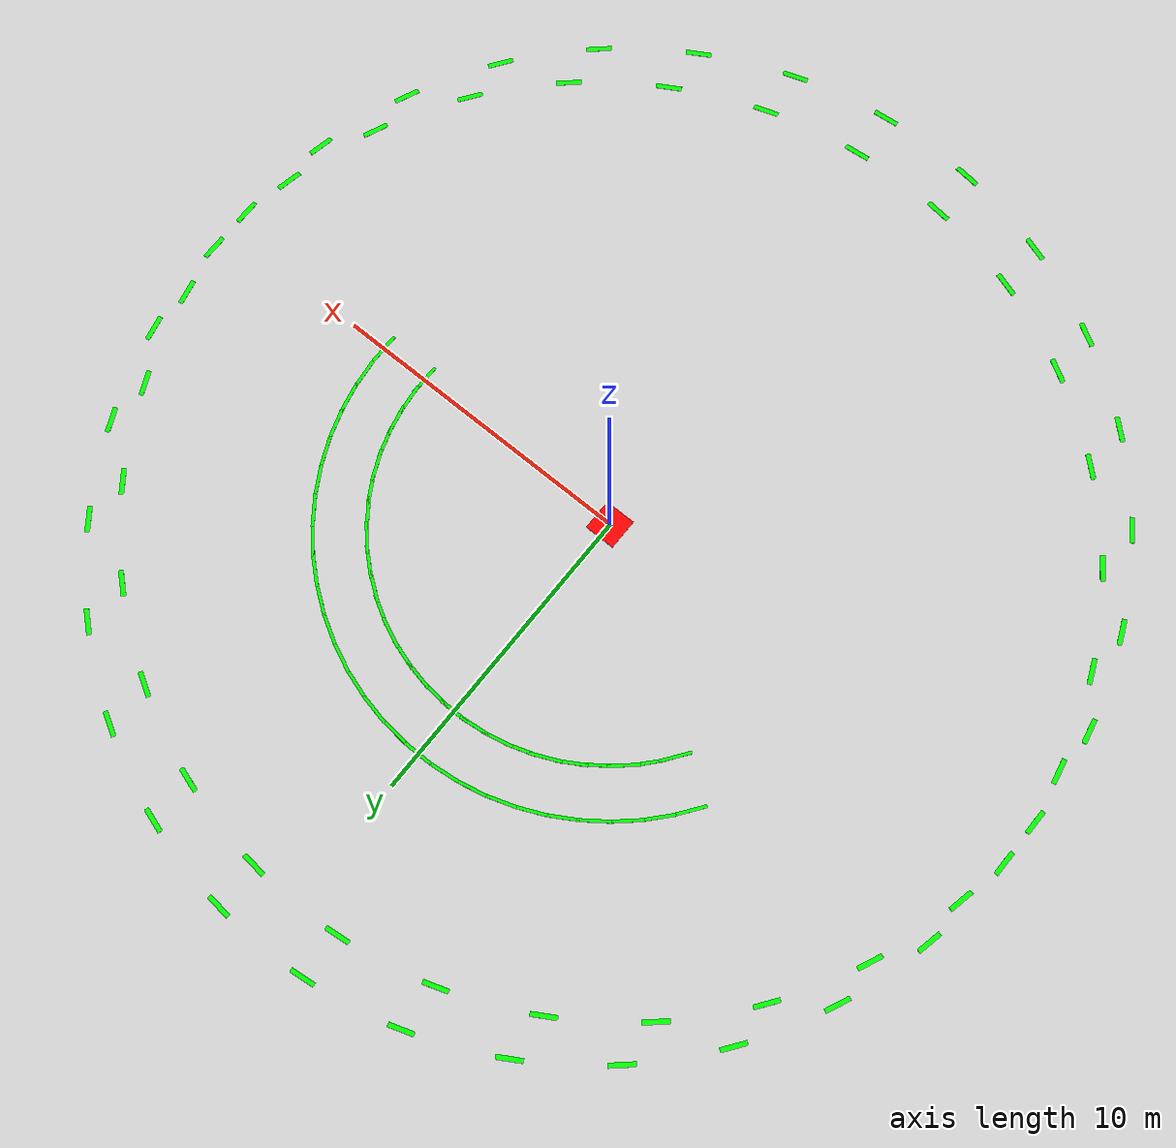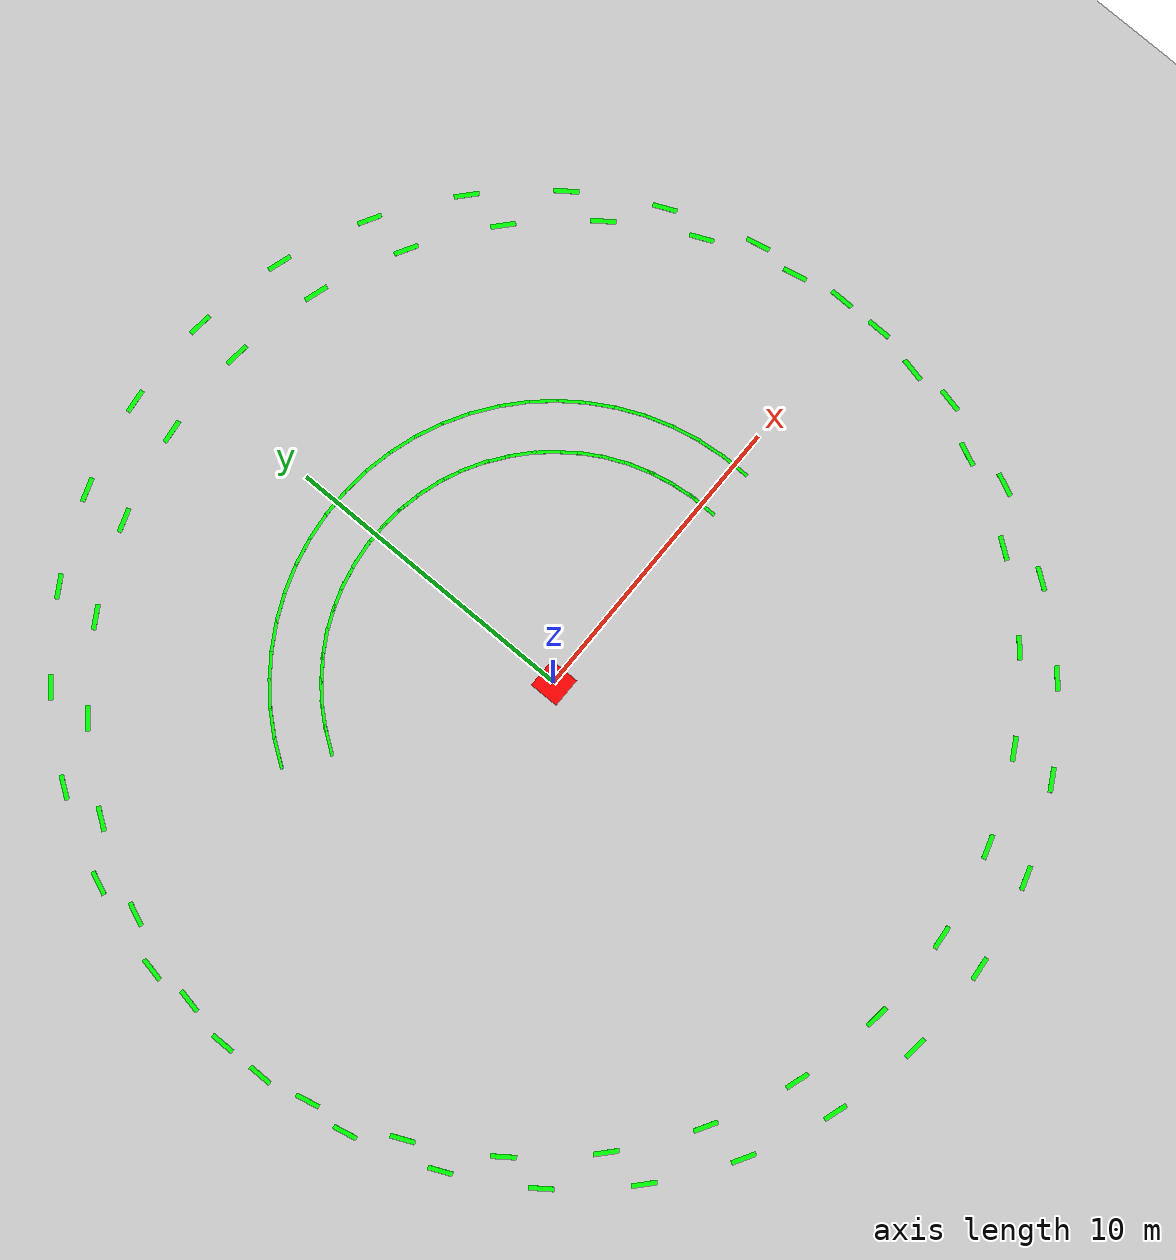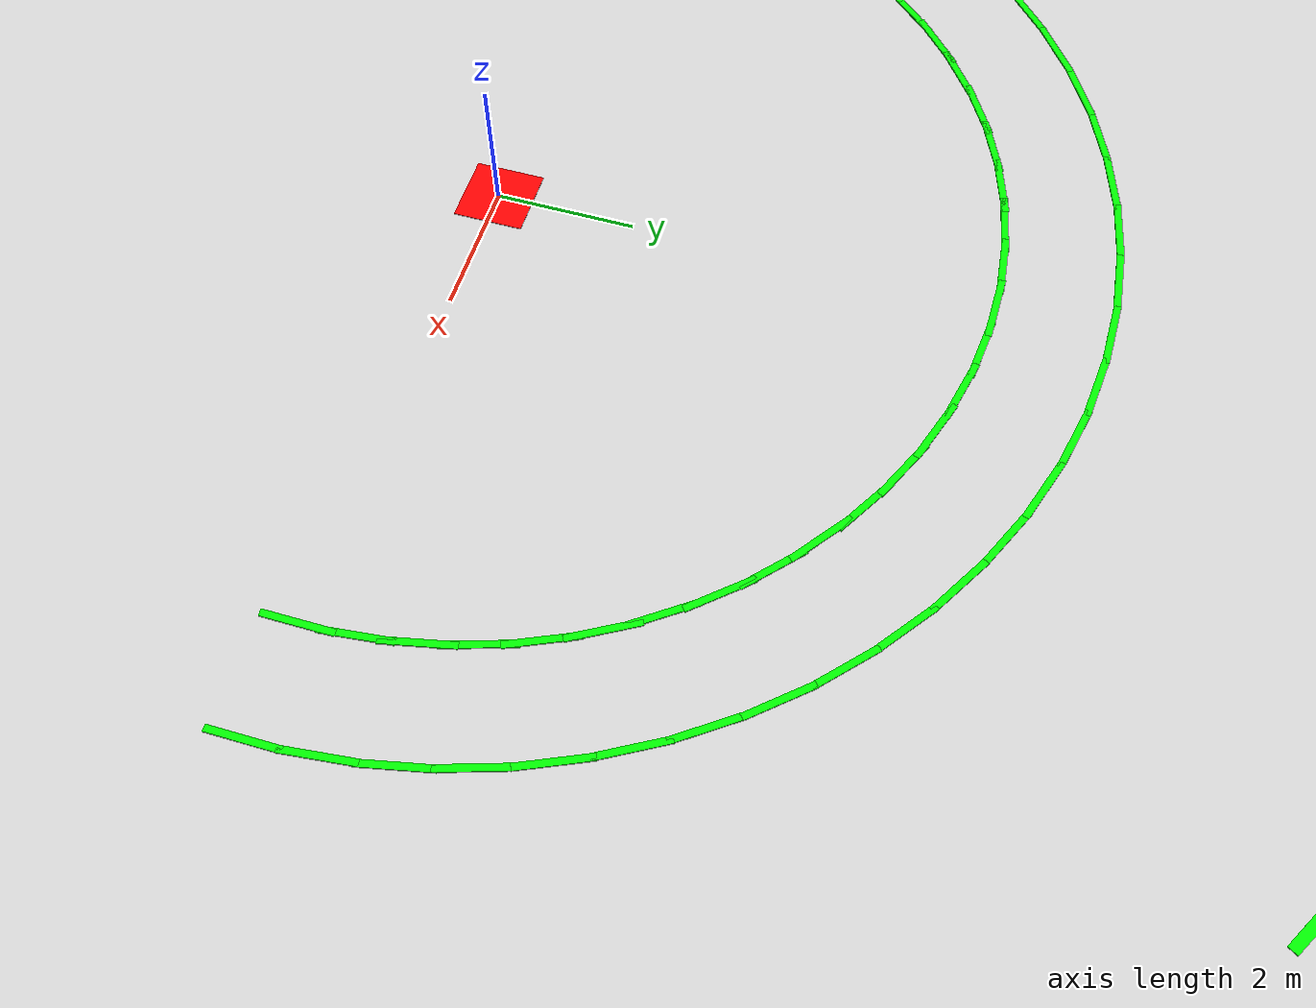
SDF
<?xml version="1.0" ?>
<sdf version="1.6">
  <world name="curved_lane_world">
    <include>
      <uri>model://sun</uri>
    </include>
    <include>
      <uri>model://ground_plane</uri>
    </include>

    <model name='lane_segment_0_L'>
      <static>true</static>
      <pose>7.20 0.00 0.02 0 0 1.57</pose>
      <link name='link'>
        <visual name='visual'>
          <geometry>
            <box>
              <size>1.0 0.1 0.02</size>
            </box>
          </geometry>
          <material>
            <ambient>0 1 0 1</ambient>
            <diffuse>0 1 0 1</diffuse>
          </material>
        </visual>
        <collision name='collision'>
          <geometry>
            <box>
              <size>1.0 0.1 0.02</size>
            </box>
          </geometry>
        </collision>
      </link>
    </model>

    <model name='lane_segment_0_R'>
      <static>true</static>
      <pose>8.80 0.00 0.02 0 0 1.57</pose>
      <link name='link'>
        <visual name='visual'>
          <geometry>
            <box>
              <size>1.0 0.1 0.02</size>
            </box>
          </geometry>
          <material>
            <ambient>0 1 0 1</ambient>
            <diffuse>0 1 0 1</diffuse>
          </material>
        </visual>
        <collision name='collision'>
          <geometry>
            <box>
              <size>1.0 0.1 0.02</size>
            </box>
          </geometry>
        </collision>
      </link>
    </model>

    <model name='lane_segment_1_L'>
      <static>true</static>
      <pose>7.16 0.75 0.02 0 0 1.68</pose>
      <link name='link'>
        <visual name='visual'>
          <geometry>
            <box>
              <size>1.0 0.1 0.02</size>
            </box>
          </geometry>
          <material>
            <ambient>0 1 0 1</ambient>
            <diffuse>0 1 0 1</diffuse>
          </material>
        </visual>
        <collision name='collision'>
          <geometry>
            <box>
              <size>1.0 0.1 0.02</size>
            </box>
          </geometry>
        </collision>
      </link>
    </model>

    <model name='lane_segment_1_R'>
      <static>true</static>
      <pose>8.75 0.92 0.02 0 0 1.68</pose>
      <link name='link'>
        <visual name='visual'>
          <geometry>
            <box>
              <size>1.0 0.1 0.02</size>
            </box>
          </geometry>
          <material>
            <ambient>0 1 0 1</ambient>
            <diffuse>0 1 0 1</diffuse>
          </material>
        </visual>
        <collision name='collision'>
          <geometry>
            <box>
              <size>1.0 0.1 0.02</size>
            </box>
          </geometry>
        </collision>
      </link>
    </model>

    <model name='lane_segment_2_L'>
      <static>true</static>
      <pose>7.04 1.50 0.02 0 0 1.78</pose>
      <link name='link'>
        <visual name='visual'>
          <geometry>
            <box>
              <size>1.0 0.1 0.02</size>
            </box>
          </geometry>
          <material>
            <ambient>0 1 0 1</ambient>
            <diffuse>0 1 0 1</diffuse>
          </material>
        </visual>
        <collision name='collision'>
          <geometry>
            <box>
              <size>1.0 0.1 0.02</size>
            </box>
          </geometry>
        </collision>
      </link>
    </model>

    <model name='lane_segment_2_R'>
      <static>true</static>
      <pose>8.61 1.83 0.02 0 0 1.78</pose>
      <link name='link'>
        <visual name='visual'>
          <geometry>
            <box>
              <size>1.0 0.1 0.02</size>
            </box>
          </geometry>
          <material>
            <ambient>0 1 0 1</ambient>
            <diffuse>0 1 0 1</diffuse>
          </material>
        </visual>
        <collision name='collision'>
          <geometry>
            <box>
              <size>1.0 0.1 0.02</size>
            </box>
          </geometry>
        </collision>
      </link>
    </model>

    <model name='lane_segment_3_L'>
      <static>true</static>
      <pose>6.85 2.22 0.02 0 0 1.88</pose>
      <link name='link'>
        <visual name='visual'>
          <geometry>
            <box>
              <size>1.0 0.1 0.02</size>
            </box>
          </geometry>
          <material>
            <ambient>0 1 0 1</ambient>
            <diffuse>0 1 0 1</diffuse>
          </material>
        </visual>
        <collision name='collision'>
          <geometry>
            <box>
              <size>1.0 0.1 0.02</size>
            </box>
          </geometry>
        </collision>
      </link>
    </model>

    <model name='lane_segment_3_R'>
      <static>true</static>
      <pose>8.37 2.72 0.02 0 0 1.88</pose>
      <link name='link'>
        <visual name='visual'>
          <geometry>
            <box>
              <size>1.0 0.1 0.02</size>
            </box>
          </geometry>
          <material>
            <ambient>0 1 0 1</ambient>
            <diffuse>0 1 0 1</diffuse>
          </material>
        </visual>
        <collision name='collision'>
          <geometry>
            <box>
              <size>1.0 0.1 0.02</size>
            </box>
          </geometry>
        </collision>
      </link>
    </model>

    <model name='lane_segment_4_L'>
      <static>true</static>
      <pose>6.58 2.93 0.02 0 0 1.99</pose>
      <link name='link'>
        <visual name='visual'>
          <geometry>
            <box>
              <size>1.0 0.1 0.02</size>
            </box>
          </geometry>
          <material>
            <ambient>0 1 0 1</ambient>
            <diffuse>0 1 0 1</diffuse>
          </material>
        </visual>
        <collision name='collision'>
          <geometry>
            <box>
              <size>1.0 0.1 0.02</size>
            </box>
          </geometry>
        </collision>
      </link>
    </model>

    <model name='lane_segment_4_R'>
      <static>true</static>
      <pose>8.04 3.58 0.02 0 0 1.99</pose>
      <link name='link'>
        <visual name='visual'>
          <geometry>
            <box>
              <size>1.0 0.1 0.02</size>
            </box>
          </geometry>
          <material>
            <ambient>0 1 0 1</ambient>
            <diffuse>0 1 0 1</diffuse>
          </material>
        </visual>
        <collision name='collision'>
          <geometry>
            <box>
              <size>1.0 0.1 0.02</size>
            </box>
          </geometry>
        </collision>
      </link>
    </model>

    <model name='lane_segment_5_L'>
      <static>true</static>
      <pose>6.24 3.60 0.02 0 0 2.09</pose>
      <link name='link'>
        <visual name='visual'>
          <geometry>
            <box>
              <size>1.0 0.1 0.02</size>
            </box>
          </geometry>
          <material>
            <ambient>0 1 0 1</ambient>
            <diffuse>0 1 0 1</diffuse>
          </material>
        </visual>
        <collision name='collision'>
          <geometry>
            <box>
              <size>1.0 0.1 0.02</size>
            </box>
          </geometry>
        </collision>
      </link>
    </model>

    <model name='lane_segment_5_R'>
      <static>true</static>
      <pose>7.62 4.40 0.02 0 0 2.09</pose>
      <link name='link'>
        <visual name='visual'>
          <geometry>
            <box>
              <size>1.0 0.1 0.02</size>
            </box>
          </geometry>
          <material>
            <ambient>0 1 0 1</ambient>
            <diffuse>0 1 0 1</diffuse>
          </material>
        </visual>
        <collision name='collision'>
          <geometry>
            <box>
              <size>1.0 0.1 0.02</size>
            </box>
          </geometry>
        </collision>
      </link>
    </model>

    <model name='lane_segment_6_L'>
      <static>true</static>
      <pose>5.82 4.23 0.02 0 0 2.20</pose>
      <link name='link'>
        <visual name='visual'>
          <geometry>
            <box>
              <size>1.0 0.1 0.02</size>
            </box>
          </geometry>
          <material>
            <ambient>0 1 0 1</ambient>
            <diffuse>0 1 0 1</diffuse>
          </material>
        </visual>
        <collision name='collision'>
          <geometry>
            <box>
              <size>1.0 0.1 0.02</size>
            </box>
          </geometry>
        </collision>
      </link>
    </model>

    <model name='lane_segment_6_R'>
      <static>true</static>
      <pose>7.12 5.17 0.02 0 0 2.20</pose>
      <link name='link'>
        <visual name='visual'>
          <geometry>
            <box>
              <size>1.0 0.1 0.02</size>
            </box>
          </geometry>
          <material>
            <ambient>0 1 0 1</ambient>
            <diffuse>0 1 0 1</diffuse>
          </material>
        </visual>
        <collision name='collision'>
          <geometry>
            <box>
              <size>1.0 0.1 0.02</size>
            </box>
          </geometry>
        </collision>
      </link>
    </model>

    <model name='lane_segment_7_L'>
      <static>true</static>
      <pose>5.35 4.82 0.02 0 0 2.30</pose>
      <link name='link'>
        <visual name='visual'>
          <geometry>
            <box>
              <size>1.0 0.1 0.02</size>
            </box>
          </geometry>
          <material>
            <ambient>0 1 0 1</ambient>
            <diffuse>0 1 0 1</diffuse>
          </material>
        </visual>
        <collision name='collision'>
          <geometry>
            <box>
              <size>1.0 0.1 0.02</size>
            </box>
          </geometry>
        </collision>
      </link>
    </model>

    <model name='lane_segment_7_R'>
      <static>true</static>
      <pose>6.54 5.89 0.02 0 0 2.30</pose>
      <link name='link'>
        <visual name='visual'>
          <geometry>
            <box>
              <size>1.0 0.1 0.02</size>
            </box>
          </geometry>
          <material>
            <ambient>0 1 0 1</ambient>
            <diffuse>0 1 0 1</diffuse>
          </material>
        </visual>
        <collision name='collision'>
          <geometry>
            <box>
              <size>1.0 0.1 0.02</size>
            </box>
          </geometry>
        </collision>
      </link>
    </model>

    <model name='lane_segment_8_L'>
      <static>true</static>
      <pose>4.82 5.35 0.02 0 0 2.41</pose>
      <link name='link'>
        <visual name='visual'>
          <geometry>
            <box>
              <size>1.0 0.1 0.02</size>
            </box>
          </geometry>
          <material>
            <ambient>0 1 0 1</ambient>
            <diffuse>0 1 0 1</diffuse>
          </material>
        </visual>
        <collision name='collision'>
          <geometry>
            <box>
              <size>1.0 0.1 0.02</size>
            </box>
          </geometry>
        </collision>
      </link>
    </model>

    <model name='lane_segment_8_R'>
      <static>true</static>
      <pose>5.89 6.54 0.02 0 0 2.41</pose>
      <link name='link'>
        <visual name='visual'>
          <geometry>
            <box>
              <size>1.0 0.1 0.02</size>
            </box>
          </geometry>
          <material>
            <ambient>0 1 0 1</ambient>
            <diffuse>0 1 0 1</diffuse>
          </material>
        </visual>
        <collision name='collision'>
          <geometry>
            <box>
              <size>1.0 0.1 0.02</size>
            </box>
          </geometry>
        </collision>
      </link>
    </model>

    <model name='lane_segment_9_L'>
      <static>true</static>
      <pose>4.23 5.82 0.02 0 0 2.51</pose>
      <link name='link'>
        <visual name='visual'>
          <geometry>
            <box>
              <size>1.0 0.1 0.02</size>
            </box>
          </geometry>
          <material>
            <ambient>0 1 0 1</ambient>
            <diffuse>0 1 0 1</diffuse>
          </material>
        </visual>
        <collision name='collision'>
          <geometry>
            <box>
              <size>1.0 0.1 0.02</size>
            </box>
          </geometry>
        </collision>
      </link>
    </model>

    <model name='lane_segment_9_R'>
      <static>true</static>
      <pose>5.17 7.12 0.02 0 0 2.51</pose>
      <link name='link'>
        <visual name='visual'>
          <geometry>
            <box>
              <size>1.0 0.1 0.02</size>
            </box>
          </geometry>
          <material>
            <ambient>0 1 0 1</ambient>
            <diffuse>0 1 0 1</diffuse>
          </material>
        </visual>
        <collision name='collision'>
          <geometry>
            <box>
              <size>1.0 0.1 0.02</size>
            </box>
          </geometry>
        </collision>
      </link>
    </model>

    <model name='lane_segment_10_L'>
      <static>true</static>
      <pose>3.60 6.24 0.02 0 0 2.62</pose>
      <link name='link'>
        <visual name='visual'>
          <geometry>
            <box>
              <size>1.0 0.1 0.02</size>
            </box>
          </geometry>
          <material>
            <ambient>0 1 0 1</ambient>
            <diffuse>0 1 0 1</diffuse>
          </material>
        </visual>
        <collision name='collision'>
          <geometry>
            <box>
              <size>1.0 0.1 0.02</size>
            </box>
          </geometry>
        </collision>
      </link>
    </model>

    <model name='lane_segment_10_R'>
      <static>true</static>
      <pose>4.40 7.62 0.02 0 0 2.62</pose>
      <link name='link'>
        <visual name='visual'>
          <geometry>
            <box>
              <size>1.0 0.1 0.02</size>
            </box>
          </geometry>
          <material>
            <ambient>0 1 0 1</ambient>
            <diffuse>0 1 0 1</diffuse>
          </material>
        </visual>
        <collision name='collision'>
          <geometry>
            <box>
              <size>1.0 0.1 0.02</size>
            </box>
          </geometry>
        </collision>
      </link>
    </model>

    <model name='lane_segment_11_L'>
      <static>true</static>
      <pose>2.93 6.58 0.02 0 0 2.72</pose>
      <link name='link'>
        <visual name='visual'>
          <geometry>
            <box>
              <size>1.0 0.1 0.02</size>
            </box>
          </geometry>
          <material>
            <ambient>0 1 0 1</ambient>
            <diffuse>0 1 0 1</diffuse>
          </material>
        </visual>
        <collision name='collision'>
          <geometry>
            <box>
              <size>1.0 0.1 0.02</size>
            </box>
          </geometry>
        </collision>
      </link>
    </model>

    <model name='lane_segment_11_R'>
      <static>true</static>
      <pose>3.58 8.04 0.02 0 0 2.72</pose>
      <link name='link'>
        <visual name='visual'>
          <geometry>
            <box>
              <size>1.0 0.1 0.02</size>
            </box>
          </geometry>
          <material>
            <ambient>0 1 0 1</ambient>
            <diffuse>0 1 0 1</diffuse>
          </material>
        </visual>
        <collision name='collision'>
          <geometry>
            <box>
              <size>1.0 0.1 0.02</size>
            </box>
          </geometry>
        </collision>
      </link>
    </model>

    <model name='lane_segment_12_L'>
      <static>true</static>
      <pose>2.22 6.85 0.02 0 0 2.83</pose>
      <link name='link'>
        <visual name='visual'>
          <geometry>
            <box>
              <size>1.0 0.1 0.02</size>
            </box>
          </geometry>
          <material>
            <ambient>0 1 0 1</ambient>
            <diffuse>0 1 0 1</diffuse>
          </material>
        </visual>
        <collision name='collision'>
          <geometry>
            <box>
              <size>1.0 0.1 0.02</size>
            </box>
          </geometry>
        </collision>
      </link>
    </model>

    <model name='lane_segment_12_R'>
      <static>true</static>
      <pose>2.72 8.37 0.02 0 0 2.83</pose>
      <link name='link'>
        <visual name='visual'>
          <geometry>
            <box>
              <size>1.0 0.1 0.02</size>
            </box>
          </geometry>
          <material>
            <ambient>0 1 0 1</ambient>
            <diffuse>0 1 0 1</diffuse>
          </material>
        </visual>
        <collision name='collision'>
          <geometry>
            <box>
              <size>1.0 0.1 0.02</size>
            </box>
          </geometry>
        </collision>
      </link>
    </model>

    <model name='lane_segment_13_L'>
      <static>true</static>
      <pose>1.50 7.04 0.02 0 0 2.93</pose>
      <link name='link'>
        <visual name='visual'>
          <geometry>
            <box>
              <size>1.0 0.1 0.02</size>
            </box>
          </geometry>
          <material>
            <ambient>0 1 0 1</ambient>
            <diffuse>0 1 0 1</diffuse>
          </material>
        </visual>
        <collision name='collision'>
          <geometry>
            <box>
              <size>1.0 0.1 0.02</size>
            </box>
          </geometry>
        </collision>
      </link>
    </model>

    <model name='lane_segment_13_R'>
      <static>true</static>
      <pose>1.83 8.61 0.02 0 0 2.93</pose>
      <link name='link'>
        <visual name='visual'>
          <geometry>
            <box>
              <size>1.0 0.1 0.02</size>
            </box>
          </geometry>
          <material>
            <ambient>0 1 0 1</ambient>
            <diffuse>0 1 0 1</diffuse>
          </material>
        </visual>
        <collision name='collision'>
          <geometry>
            <box>
              <size>1.0 0.1 0.02</size>
            </box>
          </geometry>
        </collision>
      </link>
    </model>

    <model name='lane_segment_14_L'>
      <static>true</static>
      <pose>0.75 7.16 0.02 0 0 3.04</pose>
      <link name='link'>
        <visual name='visual'>
          <geometry>
            <box>
              <size>1.0 0.1 0.02</size>
            </box>
          </geometry>
          <material>
            <ambient>0 1 0 1</ambient>
            <diffuse>0 1 0 1</diffuse>
          </material>
        </visual>
        <collision name='collision'>
          <geometry>
            <box>
              <size>1.0 0.1 0.02</size>
            </box>
          </geometry>
        </collision>
      </link>
    </model>

    <model name='lane_segment_14_R'>
      <static>true</static>
      <pose>0.92 8.75 0.02 0 0 3.04</pose>
      <link name='link'>
        <visual name='visual'>
          <geometry>
            <box>
              <size>1.0 0.1 0.02</size>
            </box>
          </geometry>
          <material>
            <ambient>0 1 0 1</ambient>
            <diffuse>0 1 0 1</diffuse>
          </material>
        </visual>
        <collision name='collision'>
          <geometry>
            <box>
              <size>1.0 0.1 0.02</size>
            </box>
          </geometry>
        </collision>
      </link>
    </model>

    <model name='lane_segment_15_L'>
      <static>true</static>
      <pose>0.00 7.20 0.02 0 0 3.14</pose>
      <link name='link'>
        <visual name='visual'>
          <geometry>
            <box>
              <size>1.0 0.1 0.02</size>
            </box>
          </geometry>
          <material>
            <ambient>0 1 0 1</ambient>
            <diffuse>0 1 0 1</diffuse>
          </material>
        </visual>
        <collision name='collision'>
          <geometry>
            <box>
              <size>1.0 0.1 0.02</size>
            </box>
          </geometry>
        </collision>
      </link>
    </model>

    <model name='lane_segment_15_R'>
      <static>true</static>
      <pose>0.00 8.80 0.02 0 0 3.14</pose>
      <link name='link'>
        <visual name='visual'>
          <geometry>
            <box>
              <size>1.0 0.1 0.02</size>
            </box>
          </geometry>
          <material>
            <ambient>0 1 0 1</ambient>
            <diffuse>0 1 0 1</diffuse>
          </material>
        </visual>
        <collision name='collision'>
          <geometry>
            <box>
              <size>1.0 0.1 0.02</size>
            </box>
          </geometry>
        </collision>
      </link>
    </model>

    <model name='lane_segment_16_L'>
      <static>true</static>
      <pose>-0.75 7.16 0.02 0 0 3.25</pose>
      <link name='link'>
        <visual name='visual'>
          <geometry>
            <box>
              <size>1.0 0.1 0.02</size>
            </box>
          </geometry>
          <material>
            <ambient>0 1 0 1</ambient>
            <diffuse>0 1 0 1</diffuse>
          </material>
        </visual>
        <collision name='collision'>
          <geometry>
            <box>
              <size>1.0 0.1 0.02</size>
            </box>
          </geometry>
        </collision>
      </link>
    </model>

    <model name='lane_segment_16_R'>
      <static>true</static>
      <pose>-0.92 8.75 0.02 0 0 3.25</pose>
      <link name='link'>
        <visual name='visual'>
          <geometry>
            <box>
              <size>1.0 0.1 0.02</size>
            </box>
          </geometry>
          <material>
            <ambient>0 1 0 1</ambient>
            <diffuse>0 1 0 1</diffuse>
          </material>
        </visual>
        <collision name='collision'>
          <geometry>
            <box>
              <size>1.0 0.1 0.02</size>
            </box>
          </geometry>
        </collision>
      </link>
    </model>

    <model name='lane_segment_17_L'>
      <static>true</static>
      <pose>-1.50 7.04 0.02 0 0 3.35</pose>
      <link name='link'>
        <visual name='visual'>
          <geometry>
            <box>
              <size>1.0 0.1 0.02</size>
            </box>
          </geometry>
          <material>
            <ambient>0 1 0 1</ambient>
            <diffuse>0 1 0 1</diffuse>
          </material>
        </visual>
        <collision name='collision'>
          <geometry>
            <box>
              <size>1.0 0.1 0.02</size>
            </box>
          </geometry>
        </collision>
      </link>
    </model>

    <model name='lane_segment_17_R'>
      <static>true</static>
      <pose>-1.83 8.61 0.02 0 0 3.35</pose>
      <link name='link'>
        <visual name='visual'>
          <geometry>
            <box>
              <size>1.0 0.1 0.02</size>
            </box>
          </geometry>
          <material>
            <ambient>0 1 0 1</ambient>
            <diffuse>0 1 0 1</diffuse>
          </material>
        </visual>
        <collision name='collision'>
          <geometry>
            <box>
              <size>1.0 0.1 0.02</size>
            </box>
          </geometry>
        </collision>
      </link>
    </model>

    <model name='lane_segment_18_L'>
      <static>true</static>
      <pose>-2.22 6.85 0.02 0 0 3.46</pose>
      <link name='link'>
        <visual name='visual'>
          <geometry>
            <box>
              <size>1.0 0.1 0.02</size>
            </box>
          </geometry>
          <material>
            <ambient>0 1 0 1</ambient>
            <diffuse>0 1 0 1</diffuse>
          </material>
        </visual>
        <collision name='collision'>
          <geometry>
            <box>
              <size>1.0 0.1 0.02</size>
            </box>
          </geometry>
        </collision>
      </link>
    </model>

    <model name='lane_segment_18_R'>
      <static>true</static>
      <pose>-2.72 8.37 0.02 0 0 3.46</pose>
      <link name='link'>
        <visual name='visual'>
          <geometry>
            <box>
              <size>1.0 0.1 0.02</size>
            </box>
          </geometry>
          <material>
            <ambient>0 1 0 1</ambient>
            <diffuse>0 1 0 1</diffuse>
          </material>
        </visual>
        <collision name='collision'>
          <geometry>
            <box>
              <size>1.0 0.1 0.02</size>
            </box>
          </geometry>
        </collision>
      </link>
    </model>

    <model name='lane_segment_19_L'>
      <static>true</static>
      <pose>-2.93 6.58 0.02 0 0 3.56</pose>
      <link name='link'>
        <visual name='visual'>
          <geometry>
            <box>
              <size>1.0 0.1 0.02</size>
            </box>
          </geometry>
          <material>
            <ambient>0 1 0 1</ambient>
            <diffuse>0 1 0 1</diffuse>
          </material>
        </visual>
        <collision name='collision'>
          <geometry>
            <box>
              <size>1.0 0.1 0.02</size>
            </box>
          </geometry>
        </collision>
      </link>
    </model>

    <model name='lane_segment_19_R'>
      <static>true</static>
      <pose>-3.58 8.04 0.02 0 0 3.56</pose>
      <link name='link'>
        <visual name='visual'>
          <geometry>
            <box>
              <size>1.0 0.1 0.02</size>
            </box>
          </geometry>
          <material>
            <ambient>0 1 0 1</ambient>
            <diffuse>0 1 0 1</diffuse>
          </material>
        </visual>
        <collision name='collision'>
          <geometry>
            <box>
              <size>1.0 0.1 0.02</size>
            </box>
          </geometry>
        </collision>
      </link>
    </model>

    <model name='lane_segment_20_L'>
      <static>true</static>
      <pose>-3.60 6.24 0.02 0 0 3.67</pose>
      <link name='link'>
        <visual name='visual'>
          <geometry>
            <box>
              <size>1.0 0.1 0.02</size>
            </box>
          </geometry>
          <material>
            <ambient>0 1 0 1</ambient>
            <diffuse>0 1 0 1</diffuse>
          </material>
        </visual>
        <collision name='collision'>
          <geometry>
            <box>
              <size>1.0 0.1 0.02</size>
            </box>
          </geometry>
        </collision>
      </link>
    </model>

    <model name='lane_segment_20_R'>
      <static>true</static>
      <pose>-4.40 7.62 0.02 0 0 3.67</pose>
      <link name='link'>
        <visual name='visual'>
          <geometry>
            <box>
              <size>1.0 0.1 0.02</size>
            </box>
          </geometry>
          <material>
            <ambient>0 1 0 1</ambient>
            <diffuse>0 1 0 1</diffuse>
          </material>
        </visual>
        <collision name='collision'>
          <geometry>
            <box>
              <size>1.0 0.1 0.02</size>
            </box>
          </geometry>
        </collision>
      </link>
    </model>

    <model name='lane_segment_21_L'>
      <static>true</static>
      <pose>-4.23 5.82 0.02 0 0 3.77</pose>
      <link name='link'>
        <visual name='visual'>
          <geometry>
            <box>
              <size>1.0 0.1 0.02</size>
            </box>
          </geometry>
          <material>
            <ambient>0 1 0 1</ambient>
            <diffuse>0 1 0 1</diffuse>
          </material>
        </visual>
        <collision name='collision'>
          <geometry>
            <box>
              <size>1.0 0.1 0.02</size>
            </box>
          </geometry>
        </collision>
      </link>
    </model>

    <model name='lane_segment_21_R'>
      <static>true</static>
      <pose>-5.17 7.12 0.02 0 0 3.77</pose>
      <link name='link'>
        <visual name='visual'>
          <geometry>
            <box>
              <size>1.0 0.1 0.02</size>
            </box>
          </geometry>
          <material>
            <ambient>0 1 0 1</ambient>
            <diffuse>0 1 0 1</diffuse>
          </material>
        </visual>
        <collision name='collision'>
          <geometry>
            <box>
              <size>1.0 0.1 0.02</size>
            </box>
          </geometry>
        </collision>
      </link>
    </model>

    <model name='lane_segment_22_L'>
      <static>true</static>
      <pose>-4.82 5.35 0.02 0 0 3.87</pose>
      <link name='link'>
        <visual name='visual'>
          <geometry>
            <box>
              <size>1.0 0.1 0.02</size>
            </box>
          </geometry>
          <material>
            <ambient>0 1 0 1</ambient>
            <diffuse>0 1 0 1</diffuse>
          </material>
        </visual>
        <collision name='collision'>
          <geometry>
            <box>
              <size>1.0 0.1 0.02</size>
            </box>
          </geometry>
        </collision>
      </link>
    </model>

    <model name='lane_segment_22_R'>
      <static>true</static>
      <pose>-5.89 6.54 0.02 0 0 3.87</pose>
      <link name='link'>
        <visual name='visual'>
          <geometry>
            <box>
              <size>1.0 0.1 0.02</size>
            </box>
          </geometry>
          <material>
            <ambient>0 1 0 1</ambient>
            <diffuse>0 1 0 1</diffuse>
          </material>
        </visual>
        <collision name='collision'>
          <geometry>
            <box>
              <size>1.0 0.1 0.02</size>
            </box>
          </geometry>
        </collision>
      </link>
    </model>

    <model name='lane_segment_23_L'>
      <static>true</static>
      <pose>-5.35 4.82 0.02 0 0 3.98</pose>
      <link name='link'>
        <visual name='visual'>
          <geometry>
            <box>
              <size>1.0 0.1 0.02</size>
            </box>
          </geometry>
          <material>
            <ambient>0 1 0 1</ambient>
            <diffuse>0 1 0 1</diffuse>
          </material>
        </visual>
        <collision name='collision'>
          <geometry>
            <box>
              <size>1.0 0.1 0.02</size>
            </box>
          </geometry>
        </collision>
      </link>
    </model>

    <model name='lane_segment_23_R'>
      <static>true</static>
      <pose>-6.54 5.89 0.02 0 0 3.98</pose>
      <link name='link'>
        <visual name='visual'>
          <geometry>
            <box>
              <size>1.0 0.1 0.02</size>
            </box>
          </geometry>
          <material>
            <ambient>0 1 0 1</ambient>
            <diffuse>0 1 0 1</diffuse>
          </material>
        </visual>
        <collision name='collision'>
          <geometry>
            <box>
              <size>1.0 0.1 0.02</size>
            </box>
          </geometry>
        </collision>
      </link>
    </model>

    <model name='lane_segment_24_L'>
      <static>true</static>
      <pose>-5.82 4.23 0.02 0 0 4.08</pose>
      <link name='link'>
        <visual name='visual'>
          <geometry>
            <box>
              <size>1.0 0.1 0.02</size>
            </box>
          </geometry>
          <material>
            <ambient>0 1 0 1</ambient>
            <diffuse>0 1 0 1</diffuse>
          </material>
        </visual>
        <collision name='collision'>
          <geometry>
            <box>
              <size>1.0 0.1 0.02</size>
            </box>
          </geometry>
        </collision>
      </link>
    </model>

    <model name='lane_segment_24_R'>
      <static>true</static>
      <pose>-7.12 5.17 0.02 0 0 4.08</pose>
      <link name='link'>
        <visual name='visual'>
          <geometry>
            <box>
              <size>1.0 0.1 0.02</size>
            </box>
          </geometry>
          <material>
            <ambient>0 1 0 1</ambient>
            <diffuse>0 1 0 1</diffuse>
          </material>
        </visual>
        <collision name='collision'>
          <geometry>
            <box>
              <size>1.0 0.1 0.02</size>
            </box>
          </geometry>
        </collision>
      </link>
    </model>

    <model name="lane_seg_1_left">
      <static>true</static>
      <pose>15.00 -0.75 0 0 0 1.57</pose>
      <link name="lane_link_1_left">
        <visual name="segment">
          <pose>0 0 0.02 0 0 0</pose>
          <geometry><box><size>0.8 0.15 0.01</size></box></geometry>
          <material><ambient>0 1 0 1</ambient><diffuse>0 1 0 1</diffuse></material>
        </visual>
      </link>
    </model>

    <model name="lane_seg_1_right">
      <static>true</static>
      <pose>15.00 0.75 0 0 0 1.57</pose>
      <link name="lane_link_1_right">
        <visual name="segment">
          <pose>0 0 0.02 0 0 0</pose>
          <geometry><box><size>0.8 0.15 0.01</size></box></geometry>
          <material><ambient>0 1 0 1</ambient><diffuse>0 1 0 1</diffuse></material>
        </visual>
      </link>
    </model>

    <model name="lane_seg_2_left">
      <static>true</static>
      <pose>14.67 2.37 0 0 0 1.78</pose>
      <link name="lane_link_2_left">
        <visual name="segment">
          <pose>0 0 0.02 0 0 0</pose>
          <geometry><box><size>0.8 0.15 0.01</size></box></geometry>
          <material><ambient>0 1 0 1</ambient><diffuse>0 1 0 1</diffuse></material>
        </visual>
      </link>
    </model>

    <model name="lane_seg_2_right">
      <static>true</static>
      <pose>14.67 3.87 0 0 0 1.78</pose>
      <link name="lane_link_2_right">
        <visual name="segment">
          <pose>0 0 0.02 0 0 0</pose>
          <geometry><box><size>0.8 0.15 0.01</size></box></geometry>
          <material><ambient>0 1 0 1</ambient><diffuse>0 1 0 1</diffuse></material>
        </visual>
      </link>
    </model>

    <model name="lane_seg_3_left">
      <static>true</static>
      <pose>13.70 5.35 0 0 0 1.99</pose>
      <link name="lane_link_3_left">
        <visual name="segment">
          <pose>0 0 0.02 0 0 0</pose>
          <geometry><box><size>0.8 0.15 0.01</size></box></geometry>
          <material><ambient>0 1 0 1</ambient><diffuse>0 1 0 1</diffuse></material>
        </visual>
      </link>
    </model>

    <model name="lane_seg_3_right">
      <static>true</static>
      <pose>13.70 6.85 0 0 0 1.99</pose>
      <link name="lane_link_3_right">
        <visual name="segment">
          <pose>0 0 0.02 0 0 0</pose>
          <geometry><box><size>0.8 0.15 0.01</size></box></geometry>
          <material><ambient>0 1 0 1</ambient><diffuse>0 1 0 1</diffuse></material>
        </visual>
      </link>
    </model>

    <model name="lane_seg_4_left">
      <static>true</static>
      <pose>12.14 8.07 0 0 0 2.20</pose>
      <link name="lane_link_4_left">
        <visual name="segment">
          <pose>0 0 0.02 0 0 0</pose>
          <geometry><box><size>0.8 0.15 0.01</size></box></geometry>
          <material><ambient>0 1 0 1</ambient><diffuse>0 1 0 1</diffuse></material>
        </visual>
      </link>
    </model>

    <model name="lane_seg_4_right">
      <static>true</static>
      <pose>12.14 9.57 0 0 0 2.20</pose>
      <link name="lane_link_4_right">
        <visual name="segment">
          <pose>0 0 0.02 0 0 0</pose>
          <geometry><box><size>0.8 0.15 0.01</size></box></geometry>
          <material><ambient>0 1 0 1</ambient><diffuse>0 1 0 1</diffuse></material>
        </visual>
      </link>
    </model>

    <model name="lane_seg_5_left">
      <static>true</static>
      <pose>10.04 10.40 0 0 0 2.41</pose>
      <link name="lane_link_5_left">
        <visual name="segment">
          <pose>0 0 0.02 0 0 0</pose>
          <geometry><box><size>0.8 0.15 0.01</size></box></geometry>
          <material><ambient>0 1 0 1</ambient><diffuse>0 1 0 1</diffuse></material>
        </visual>
      </link>
    </model>

    <model name="lane_seg_5_right">
      <static>true</static>
      <pose>10.04 11.90 0 0 0 2.41</pose>
      <link name="lane_link_5_right">
        <visual name="segment">
          <pose>0 0 0.02 0 0 0</pose>
          <geometry><box><size>0.8 0.15 0.01</size></box></geometry>
          <material><ambient>0 1 0 1</ambient><diffuse>0 1 0 1</diffuse></material>
        </visual>
      </link>
    </model>

    <model name="lane_seg_6_left">
      <static>true</static>
      <pose>7.50 12.24 0 0 0 2.62</pose>
      <link name="lane_link_6_left">
        <visual name="segment">
          <pose>0 0 0.02 0 0 0</pose>
          <geometry><box><size>0.8 0.15 0.01</size></box></geometry>
          <material><ambient>0 1 0 1</ambient><diffuse>0 1 0 1</diffuse></material>
        </visual>
      </link>
    </model>

    <model name="lane_seg_6_right">
      <static>true</static>
      <pose>7.50 13.74 0 0 0 2.62</pose>
      <link name="lane_link_6_right">
        <visual name="segment">
          <pose>0 0 0.02 0 0 0</pose>
          <geometry><box><size>0.8 0.15 0.01</size></box></geometry>
          <material><ambient>0 1 0 1</ambient><diffuse>0 1 0 1</diffuse></material>
        </visual>
      </link>
    </model>

    <model name="lane_seg_7_left">
      <static>true</static>
      <pose>4.64 13.52 0 0 0 2.83</pose>
      <link name="lane_link_7_left">
        <visual name="segment">
          <pose>0 0 0.02 0 0 0</pose>
          <geometry><box><size>0.8 0.15 0.01</size></box></geometry>
          <material><ambient>0 1 0 1</ambient><diffuse>0 1 0 1</diffuse></material>
        </visual>
      </link>
    </model>

    <model name="lane_seg_7_right">
      <static>true</static>
      <pose>4.64 15.02 0 0 0 2.83</pose>
      <link name="lane_link_7_right">
        <visual name="segment">
          <pose>0 0 0.02 0 0 0</pose>
          <geometry><box><size>0.8 0.15 0.01</size></box></geometry>
          <material><ambient>0 1 0 1</ambient><diffuse>0 1 0 1</diffuse></material>
        </visual>
      </link>
    </model>

    <model name="lane_seg_8_left">
      <static>true</static>
      <pose>1.57 14.17 0 0 0 3.04</pose>
      <link name="lane_link_8_left">
        <visual name="segment">
          <pose>0 0 0.02 0 0 0</pose>
          <geometry><box><size>0.8 0.15 0.01</size></box></geometry>
          <material><ambient>0 1 0 1</ambient><diffuse>0 1 0 1</diffuse></material>
        </visual>
      </link>
    </model>

    <model name="lane_seg_8_right">
      <static>true</static>
      <pose>1.57 15.67 0 0 0 3.04</pose>
      <link name="lane_link_8_right">
        <visual name="segment">
          <pose>0 0 0.02 0 0 0</pose>
          <geometry><box><size>0.8 0.15 0.01</size></box></geometry>
          <material><ambient>0 1 0 1</ambient><diffuse>0 1 0 1</diffuse></material>
        </visual>
      </link>
    </model>

    <model name="lane_seg_9_left">
      <static>true</static>
      <pose>-1.57 14.17 0 0 0 3.25</pose>
      <link name="lane_link_9_left">
        <visual name="segment">
          <pose>0 0 0.02 0 0 0</pose>
          <geometry><box><size>0.8 0.15 0.01</size></box></geometry>
          <material><ambient>0 1 0 1</ambient><diffuse>0 1 0 1</diffuse></material>
        </visual>
      </link>
    </model>

    <model name="lane_seg_9_right">
      <static>true</static>
      <pose>-1.57 15.67 0 0 0 3.25</pose>
      <link name="lane_link_9_right">
        <visual name="segment">
          <pose>0 0 0.02 0 0 0</pose>
          <geometry><box><size>0.8 0.15 0.01</size></box></geometry>
          <material><ambient>0 1 0 1</ambient><diffuse>0 1 0 1</diffuse></material>
        </visual>
      </link>
    </model>

    <model name="lane_seg_10_left">
      <static>true</static>
      <pose>-4.64 13.52 0 0 0 3.46</pose>
      <link name="lane_link_10_left">
        <visual name="segment">
          <pose>0 0 0.02 0 0 0</pose>
          <geometry><box><size>0.8 0.15 0.01</size></box></geometry>
          <material><ambient>0 1 0 1</ambient><diffuse>0 1 0 1</diffuse></material>
        </visual>
      </link>
    </model>

    <model name="lane_seg_10_right">
      <static>true</static>
      <pose>-4.64 15.02 0 0 0 3.46</pose>
      <link name="lane_link_10_right">
        <visual name="segment">
          <pose>0 0 0.02 0 0 0</pose>
          <geometry><box><size>0.8 0.15 0.01</size></box></geometry>
          <material><ambient>0 1 0 1</ambient><diffuse>0 1 0 1</diffuse></material>
        </visual>
      </link>
    </model>

    <model name="lane_seg_11_left">
      <static>true</static>
      <pose>-7.50 12.24 0 0 0 3.67</pose>
      <link name="lane_link_11_left">
        <visual name="segment">
          <pose>0 0 0.02 0 0 0</pose>
          <geometry><box><size>0.8 0.15 0.01</size></box></geometry>
          <material><ambient>0 1 0 1</ambient><diffuse>0 1 0 1</diffuse></material>
        </visual>
      </link>
    </model>

    <model name="lane_seg_11_right">
      <static>true</static>
      <pose>-7.50 13.74 0 0 0 3.67</pose>
      <link name="lane_link_11_right">
        <visual name="segment">
          <pose>0 0 0.02 0 0 0</pose>
          <geometry><box><size>0.8 0.15 0.01</size></box></geometry>
          <material><ambient>0 1 0 1</ambient><diffuse>0 1 0 1</diffuse></material>
        </visual>
      </link>
    </model>

    <model name="lane_seg_12_left">
      <static>true</static>
      <pose>-10.04 10.40 0 0 0 3.87</pose>
      <link name="lane_link_12_left">
        <visual name="segment">
          <pose>0 0 0.02 0 0 0</pose>
          <geometry><box><size>0.8 0.15 0.01</size></box></geometry>
          <material><ambient>0 1 0 1</ambient><diffuse>0 1 0 1</diffuse></material>
        </visual>
      </link>
    </model>

    <model name="lane_seg_12_right">
      <static>true</static>
      <pose>-10.04 11.90 0 0 0 3.87</pose>
      <link name="lane_link_12_right">
        <visual name="segment">
          <pose>0 0 0.02 0 0 0</pose>
          <geometry><box><size>0.8 0.15 0.01</size></box></geometry>
          <material><ambient>0 1 0 1</ambient><diffuse>0 1 0 1</diffuse></material>
        </visual>
      </link>
    </model>

    <model name="lane_seg_13_left">
      <static>true</static>
      <pose>-12.14 8.07 0 0 0 4.08</pose>
      <link name="lane_link_13_left">
        <visual name="segment">
          <pose>0 0 0.02 0 0 0</pose>
          <geometry><box><size>0.8 0.15 0.01</size></box></geometry>
          <material><ambient>0 1 0 1</ambient><diffuse>0 1 0 1</diffuse></material>
        </visual>
      </link>
    </model>

    <model name="lane_seg_13_right">
      <static>true</static>
      <pose>-12.14 9.57 0 0 0 4.08</pose>
      <link name="lane_link_13_right">
        <visual name="segment">
          <pose>0 0 0.02 0 0 0</pose>
          <geometry><box><size>0.8 0.15 0.01</size></box></geometry>
          <material><ambient>0 1 0 1</ambient><diffuse>0 1 0 1</diffuse></material>
        </visual>
      </link>
    </model>

    <model name="lane_seg_14_left">
      <static>true</static>
      <pose>-13.70 5.35 0 0 0 4.29</pose>
      <link name="lane_link_14_left">
        <visual name="segment">
          <pose>0 0 0.02 0 0 0</pose>
          <geometry><box><size>0.8 0.15 0.01</size></box></geometry>
          <material><ambient>0 1 0 1</ambient><diffuse>0 1 0 1</diffuse></material>
        </visual>
      </link>
    </model>

    <model name="lane_seg_14_right">
      <static>true</static>
      <pose>-13.70 6.85 0 0 0 4.29</pose>
      <link name="lane_link_14_right">
        <visual name="segment">
          <pose>0 0 0.02 0 0 0</pose>
          <geometry><box><size>0.8 0.15 0.01</size></box></geometry>
          <material><ambient>0 1 0 1</ambient><diffuse>0 1 0 1</diffuse></material>
        </visual>
      </link>
    </model>

    <model name="lane_seg_15_left">
      <static>true</static>
      <pose>-14.67 2.37 0 0 0 4.50</pose>
      <link name="lane_link_15_left">
        <visual name="segment">
          <pose>0 0 0.02 0 0 0</pose>
          <geometry><box><size>0.8 0.15 0.01</size></box></geometry>
          <material><ambient>0 1 0 1</ambient><diffuse>0 1 0 1</diffuse></material>
        </visual>
      </link>
    </model>

    <model name="lane_seg_15_right">
      <static>true</static>
      <pose>-14.67 3.87 0 0 0 4.50</pose>
      <link name="lane_link_15_right">
        <visual name="segment">
          <pose>0 0 0.02 0 0 0</pose>
          <geometry><box><size>0.8 0.15 0.01</size></box></geometry>
          <material><ambient>0 1 0 1</ambient><diffuse>0 1 0 1</diffuse></material>
        </visual>
      </link>
    </model>

    <model name="lane_seg_16_left">
      <static>true</static>
      <pose>-15.00 -0.75 0 0 0 4.71</pose>
      <link name="lane_link_16_left">
        <visual name="segment">
          <pose>0 0 0.02 0 0 0</pose>
          <geometry><box><size>0.8 0.15 0.01</size></box></geometry>
          <material><ambient>0 1 0 1</ambient><diffuse>0 1 0 1</diffuse></material>
        </visual>
      </link>
    </model>

    <model name="lane_seg_16_right">
      <static>true</static>
      <pose>-15.00 0.75 0 0 0 4.71</pose>
      <link name="lane_link_16_right">
        <visual name="segment">
          <pose>0 0 0.02 0 0 0</pose>
          <geometry><box><size>0.8 0.15 0.01</size></box></geometry>
          <material><ambient>0 1 0 1</ambient><diffuse>0 1 0 1</diffuse></material>
        </visual>
      </link>
    </model>

    <model name="lane_seg_17_left">
      <static>true</static>
      <pose>-14.67 -3.87 0 0 0 4.92</pose>
      <link name="lane_link_17_left">
        <visual name="segment">
          <pose>0 0 0.02 0 0 0</pose>
          <geometry><box><size>0.8 0.15 0.01</size></box></geometry>
          <material><ambient>0 1 0 1</ambient><diffuse>0 1 0 1</diffuse></material>
        </visual>
      </link>
    </model>

    <model name="lane_seg_17_right">
      <static>true</static>
      <pose>-14.67 -2.37 0 0 0 4.92</pose>
      <link name="lane_link_17_right">
        <visual name="segment">
          <pose>0 0 0.02 0 0 0</pose>
          <geometry><box><size>0.8 0.15 0.01</size></box></geometry>
          <material><ambient>0 1 0 1</ambient><diffuse>0 1 0 1</diffuse></material>
        </visual>
      </link>
    </model>

    <model name="lane_seg_18_left">
      <static>true</static>
      <pose>-13.70 -6.85 0 0 0 5.13</pose>
      <link name="lane_link_18_left">
        <visual name="segment">
          <pose>0 0 0.02 0 0 0</pose>
          <geometry><box><size>0.8 0.15 0.01</size></box></geometry>
          <material><ambient>0 1 0 1</ambient><diffuse>0 1 0 1</diffuse></material>
        </visual>
      </link>
    </model>

    <model name="lane_seg_18_right">
      <static>true</static>
      <pose>-13.70 -5.35 0 0 0 5.13</pose>
      <link name="lane_link_18_right">
        <visual name="segment">
          <pose>0 0 0.02 0 0 0</pose>
          <geometry><box><size>0.8 0.15 0.01</size></box></geometry>
          <material><ambient>0 1 0 1</ambient><diffuse>0 1 0 1</diffuse></material>
        </visual>
      </link>
    </model>

    <model name="lane_seg_19_left">
      <static>true</static>
      <pose>-12.14 -9.57 0 0 0 5.34</pose>
      <link name="lane_link_19_left">
        <visual name="segment">
          <pose>0 0 0.02 0 0 0</pose>
          <geometry><box><size>0.8 0.15 0.01</size></box></geometry>
          <material><ambient>0 1 0 1</ambient><diffuse>0 1 0 1</diffuse></material>
        </visual>
      </link>
    </model>

    <model name="lane_seg_19_right">
      <static>true</static>
      <pose>-12.14 -8.07 0 0 0 5.34</pose>
      <link name="lane_link_19_right">
        <visual name="segment">
          <pose>0 0 0.02 0 0 0</pose>
          <geometry><box><size>0.8 0.15 0.01</size></box></geometry>
          <material><ambient>0 1 0 1</ambient><diffuse>0 1 0 1</diffuse></material>
        </visual>
      </link>
    </model>

    <model name="lane_seg_20_left">
      <static>true</static>
      <pose>-10.04 -11.90 0 0 0 5.55</pose>
      <link name="lane_link_20_left">
        <visual name="segment">
          <pose>0 0 0.02 0 0 0</pose>
          <geometry><box><size>0.8 0.15 0.01</size></box></geometry>
          <material><ambient>0 1 0 1</ambient><diffuse>0 1 0 1</diffuse></material>
        </visual>
      </link>
    </model>

    <model name="lane_seg_20_right">
      <static>true</static>
      <pose>-10.04 -10.40 0 0 0 5.55</pose>
      <link name="lane_link_20_right">
        <visual name="segment">
          <pose>0 0 0.02 0 0 0</pose>
          <geometry><box><size>0.8 0.15 0.01</size></box></geometry>
          <material><ambient>0 1 0 1</ambient><diffuse>0 1 0 1</diffuse></material>
        </visual>
      </link>
    </model>

    <model name="lane_seg_21_left">
      <static>true</static>
      <pose>-7.50 -13.74 0 0 0 5.76</pose>
      <link name="lane_link_21_left">
        <visual name="segment">
          <pose>0 0 0.02 0 0 0</pose>
          <geometry><box><size>0.8 0.15 0.01</size></box></geometry>
          <material><ambient>0 1 0 1</ambient><diffuse>0 1 0 1</diffuse></material>
        </visual>
      </link>
    </model>

    <model name="lane_seg_21_right">
      <static>true</static>
      <pose>-7.50 -12.24 0 0 0 5.76</pose>
      <link name="lane_link_21_right">
        <visual name="segment">
          <pose>0 0 0.02 0 0 0</pose>
          <geometry><box><size>0.8 0.15 0.01</size></box></geometry>
          <material><ambient>0 1 0 1</ambient><diffuse>0 1 0 1</diffuse></material>
        </visual>
      </link>
    </model>

    <model name="lane_seg_22_left">
      <static>true</static>
      <pose>-4.64 -15.02 0 0 0 5.97</pose>
      <link name="lane_link_22_left">
        <visual name="segment">
          <pose>0 0 0.02 0 0 0</pose>
          <geometry><box><size>0.8 0.15 0.01</size></box></geometry>
          <material><ambient>0 1 0 1</ambient><diffuse>0 1 0 1</diffuse></material>
        </visual>
      </link>
    </model>

    <model name="lane_seg_22_right">
      <static>true</static>
      <pose>-4.64 -13.52 0 0 0 5.97</pose>
      <link name="lane_link_22_right">
        <visual name="segment">
          <pose>0 0 0.02 0 0 0</pose>
          <geometry><box><size>0.8 0.15 0.01</size></box></geometry>
          <material><ambient>0 1 0 1</ambient><diffuse>0 1 0 1</diffuse></material>
        </visual>
      </link>
    </model>

    <model name="lane_seg_23_left">
      <static>true</static>
      <pose>-1.57 -15.67 0 0 0 6.18</pose>
      <link name="lane_link_23_left">
        <visual name="segment">
          <pose>0 0 0.02 0 0 0</pose>
          <geometry><box><size>0.8 0.15 0.01</size></box></geometry>
          <material><ambient>0 1 0 1</ambient><diffuse>0 1 0 1</diffuse></material>
        </visual>
      </link>
    </model>

    <model name="lane_seg_23_right">
      <static>true</static>
      <pose>-1.57 -14.17 0 0 0 6.18</pose>
      <link name="lane_link_23_right">
        <visual name="segment">
          <pose>0 0 0.02 0 0 0</pose>
          <geometry><box><size>0.8 0.15 0.01</size></box></geometry>
          <material><ambient>0 1 0 1</ambient><diffuse>0 1 0 1</diffuse></material>
        </visual>
      </link>
    </model>

    <model name="lane_seg_24_left">
      <static>true</static>
      <pose>1.57 -15.67 0 0 0 6.39</pose>
      <link name="lane_link_24_left">
        <visual name="segment">
          <pose>0 0 0.02 0 0 0</pose>
          <geometry><box><size>0.8 0.15 0.01</size></box></geometry>
          <material><ambient>0 1 0 1</ambient><diffuse>0 1 0 1</diffuse></material>
        </visual>
      </link>
    </model>

    <model name="lane_seg_24_right">
      <static>true</static>
      <pose>1.57 -14.17 0 0 0 6.39</pose>
      <link name="lane_link_24_right">
        <visual name="segment">
          <pose>0 0 0.02 0 0 0</pose>
          <geometry><box><size>0.8 0.15 0.01</size></box></geometry>
          <material><ambient>0 1 0 1</ambient><diffuse>0 1 0 1</diffuse></material>
        </visual>
      </link>
    </model>

    <model name="lane_seg_25_left">
      <static>true</static>
      <pose>4.64 -15.02 0 0 0 6.60</pose>
      <link name="lane_link_25_left">
        <visual name="segment">
          <pose>0 0 0.02 0 0 0</pose>
          <geometry><box><size>0.8 0.15 0.01</size></box></geometry>
          <material><ambient>0 1 0 1</ambient><diffuse>0 1 0 1</diffuse></material>
        </visual>
      </link>
    </model>

    <model name="lane_seg_25_right">
      <static>true</static>
      <pose>4.64 -13.52 0 0 0 6.60</pose>
      <link name="lane_link_25_right">
        <visual name="segment">
          <pose>0 0 0.02 0 0 0</pose>
          <geometry><box><size>0.8 0.15 0.01</size></box></geometry>
          <material><ambient>0 1 0 1</ambient><diffuse>0 1 0 1</diffuse></material>
        </visual>
      </link>
    </model>

    <model name="lane_seg_26_left">
      <static>true</static>
      <pose>7.50 -13.74 0 0 0 6.81</pose>
      <link name="lane_link_26_left">
        <visual name="segment">
          <pose>0 0 0.02 0 0 0</pose>
          <geometry><box><size>0.8 0.15 0.01</size></box></geometry>
          <material><ambient>0 1 0 1</ambient><diffuse>0 1 0 1</diffuse></material>
        </visual>
      </link>
    </model>

    <model name="lane_seg_26_right">
      <static>true</static>
      <pose>7.50 -12.24 0 0 0 6.81</pose>
      <link name="lane_link_26_right">
        <visual name="segment">
          <pose>0 0 0.02 0 0 0</pose>
          <geometry><box><size>0.8 0.15 0.01</size></box></geometry>
          <material><ambient>0 1 0 1</ambient><diffuse>0 1 0 1</diffuse></material>
        </visual>
      </link>
    </model>

    <model name="lane_seg_27_left">
      <static>true</static>
      <pose>10.04 -11.90 0 0 0 7.02</pose>
      <link name="lane_link_27_left">
        <visual name="segment">
          <pose>0 0 0.02 0 0 0</pose>
          <geometry><box><size>0.8 0.15 0.01</size></box></geometry>
          <material><ambient>0 1 0 1</ambient><diffuse>0 1 0 1</diffuse></material>
        </visual>
      </link>
    </model>

    <model name="lane_seg_27_right">
      <static>true</static>
      <pose>10.04 -10.40 0 0 0 7.02</pose>
      <link name="lane_link_27_right">
        <visual name="segment">
          <pose>0 0 0.02 0 0 0</pose>
          <geometry><box><size>0.8 0.15 0.01</size></box></geometry>
          <material><ambient>0 1 0 1</ambient><diffuse>0 1 0 1</diffuse></material>
        </visual>
      </link>
    </model>

    <model name="lane_seg_28_left">
      <static>true</static>
      <pose>12.14 -9.57 0 0 0 7.23</pose>
      <link name="lane_link_28_left">
        <visual name="segment">
          <pose>0 0 0.02 0 0 0</pose>
          <geometry><box><size>0.8 0.15 0.01</size></box></geometry>
          <material><ambient>0 1 0 1</ambient><diffuse>0 1 0 1</diffuse></material>
        </visual>
      </link>
    </model>

    <model name="lane_seg_28_right">
      <static>true</static>
      <pose>12.14 -8.07 0 0 0 7.23</pose>
      <link name="lane_link_28_right">
        <visual name="segment">
          <pose>0 0 0.02 0 0 0</pose>
          <geometry><box><size>0.8 0.15 0.01</size></box></geometry>
          <material><ambient>0 1 0 1</ambient><diffuse>0 1 0 1</diffuse></material>
        </visual>
      </link>
    </model>

    <model name="lane_seg_29_left">
      <static>true</static>
      <pose>13.70 -6.85 0 0 0 7.44</pose>
      <link name="lane_link_29_left">
        <visual name="segment">
          <pose>0 0 0.02 0 0 0</pose>
          <geometry><box><size>0.8 0.15 0.01</size></box></geometry>
          <material><ambient>0 1 0 1</ambient><diffuse>0 1 0 1</diffuse></material>
        </visual>
      </link>
    </model>

    <model name="lane_seg_29_right">
      <static>true</static>
      <pose>13.70 -5.35 0 0 0 7.44</pose>
      <link name="lane_link_29_right">
        <visual name="segment">
          <pose>0 0 0.02 0 0 0</pose>
          <geometry><box><size>0.8 0.15 0.01</size></box></geometry>
          <material><ambient>0 1 0 1</ambient><diffuse>0 1 0 1</diffuse></material>
        </visual>
      </link>
    </model>

    <model name="lane_seg_30_left">
      <static>true</static>
      <pose>14.67 -3.87 0 0 0 7.64</pose>
      <link name="lane_link_30_left">
        <visual name="segment">
          <pose>0 0 0.02 0 0 0</pose>
          <geometry><box><size>0.8 0.15 0.01</size></box></geometry>
          <material><ambient>0 1 0 1</ambient><diffuse>0 1 0 1</diffuse></material>
        </visual>
      </link>
    </model>

    <model name="lane_seg_30_right">
      <static>true</static>
      <pose>14.67 -2.37 0 0 0 7.64</pose>
      <link name="lane_link_30_right">
        <visual name="segment">
          <pose>0 0 0.02 0 0 0</pose>
          <geometry><box><size>0.8 0.15 0.01</size></box></geometry>
          <material><ambient>0 1 0 1</ambient><diffuse>0 1 0 1</diffuse></material>
        </visual>
      </link>
    </model>

    <model name="destination_zone">
      <pose>0 0 0 0 0 0</pose>
      <static>true</static>
      <link name="link">
        <visual name="visual">
          <geometry>
            <box>
              <size>1.0 1.0 0.01</size>
            </box>
          </geometry>
          <material>
            <ambient>1 0 0 1</ambient>
            <diffuse>1 0 0 1</diffuse>
          </material>
        </visual>
      </link>
    </model>

  </world>
</sdf>
